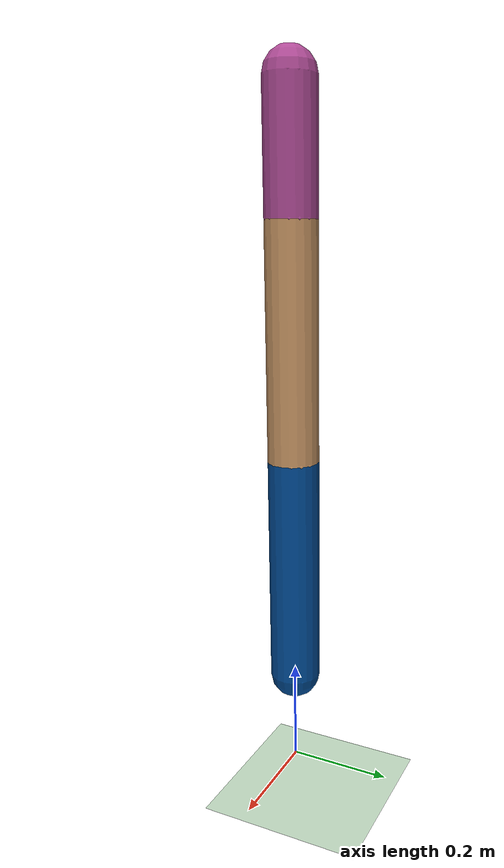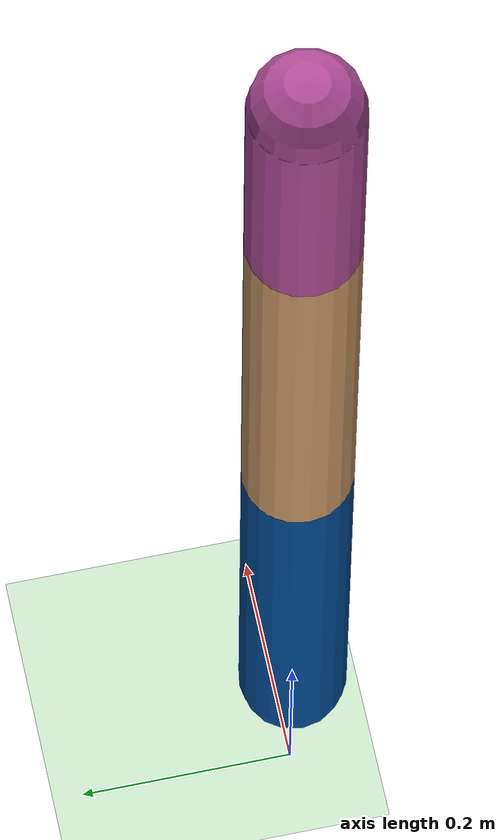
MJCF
<mujoco model="playground">
  <compiler angle="radian" inertiafromgeom="true"/>
  <default>
    <position kp="100.00" ctrlrange="-3.141592 3.141592" forcerange="-150 150"/>
    <joint armature="0.01" damping="1.0" limited="true"/> <geom conaffinity="0" condim="3" contype="1" density="1000" friction=".7 .1 .1" rgba="0.8 0.6 .4 1"/>
  </default>
  <option integrator="RK4" timestep="0.002" gravity="0 0 -9.81"/>

  <worldbody>
    <light cutoff="100" diffuse="1 1 1" dir="-0 0 -1.3" directional="true" exponent="1" pos="0 0 1.3" specular=".1 .1 .1"/>
    <geom conaffinity="1" condim="3" name="floor" pos="0 0 0" rgba="0.8 0.9 0.8 1" size="40 40 40" type="plane" material="MatPlane"/>
    <camera name="track_com" mode="trackcom" pos="0 -3 -0.25" xyaxes="1 0 0 0 0 1"/>

    <body name="torso" pos="0 0 1.33">
      <joint armature="0" axis="1 0 0" damping="0" limited="false" name="rootx" pos="0 0 0" stiffness="0" type="slide"/>
      <joint armature="0" axis="0 0 1" damping="0" limited="false" name="rootz" pos="0 0 0" stiffness="0" type="slide"/>
      <joint armature="0" axis="0 1 0" damping="0" limited="false" name="rooty" pos="0 0 0" stiffness="0" type="hinge"/>

      <geom friction="0.9" name="lower_torso_geom" rgba=".7 .3 .6 1" size="0.05 0.12" pos="0 0 -0.12" type="capsule"/>

      <body name="thigh" pos="0 0 -0.24">
        <joint axis="0 1 0" name="thigh_joint" range="-1.57 1.57" pos="0 0 0" type="hinge"/>
        <geom friction="0.9" pos="0 0 -0.225" name="thigh_geom" size="0.05 0.225" type="capsule"/>
        <body name="shin" pos="0 0 -0.45">
          <joint axis="0 1 0" name="shin_joint" range="-1.57 1.57" pos="0 0 0" type="hinge"/>
          <geom friction="0.9" rgba=".0 .3 .6 1" pos="0 0 -0.225" name="shin_geom" size="0.05 0.225" type="capsule"/>
        </body>
      </body>
    </body>
  </worldbody>

  <actuator>
    <position joint="thigh_joint" name="pos_thigh"/>
    <position joint="shin_joint" name="pos_shin"/>
  </actuator>

  <asset>
    <texture type="skybox" builtin="gradient" rgb1=".4 .5 .6" rgb2="0 0 0" width="100" height="100"/>
    <texture builtin="flat" height="1278" mark="cross" markrgb="1 1 1" name="texgeom" random="0.01" rgb1="0.8 0.6 0.4" rgb2="0.8 0.6 0.4" type="cube" width="127"/>
    <texture builtin="checker" height="100" name="texplane" rgb1="0 0 0" rgb2="0.8 0.8 0.8" type="2d" width="100"/>
    <material name="MatPlane" reflectance="0.5" shininess="1" specular="1" texrepeat="60 60" texture="texplane"/>
    <material name="geom" texture="texgeom" texuniform="true"/>
  </asset>
</mujoco>
